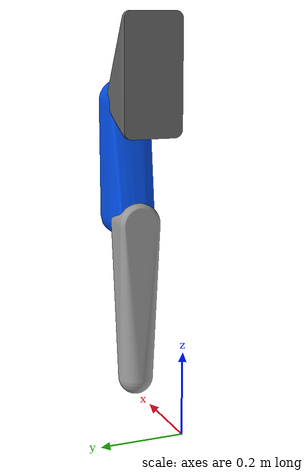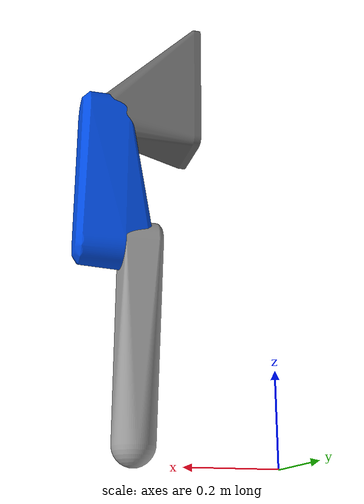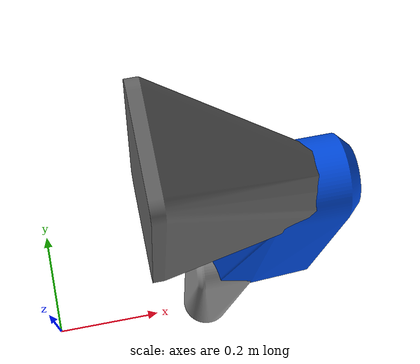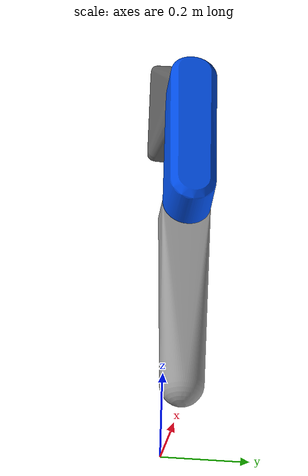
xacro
<?xml version="1.0"?>

<robot name="awesome_leg" xmlns:xacro="http://www.ros.org/wiki/xacro">

    <xacro:include filename="$(find awesome_leg)/description/urdf/utils.urdf.xacro"/>
    <xacro:include filename="$(find awesome_leg)/description/urdf/awesome_leg.xbot.xacro"/>
    <xacro:include filename="$(find awesome_leg)/description/urdf/awesome_leg.urdf.xacro"/>
    <xacro:include filename="$(find awesome_leg)/description/urdf/test_rig.gazebo.xacro"/>

    <xacro:arg name="add_ft_sensor" default="false" />

    <xacro:arg name="dump_video_frames" default="false" />

    <xacro:property name="test_rig_base_ext" value="0.1" />
    <xacro:property name="test_rig_height" value="1.0" />
    <xacro:property name="hip_mounting_offset" value="0.08" />

    <xacro:property name="pelvis_mounting_height" value="0.25" />

    <link name="world" />

    <joint name="world_test_rig" type="floating">
        <parent link="world" />
        <child link="base_link" />
        <origin xyz="${test_rig_base_ext + hip_mounting_offset} 0 ${test_rig_height / 2 + pelvis_mounting_height}" rpy="0.0 0.0 ${-PI_2}" />
    </joint>

    <link name="base_link">
        <visual name="base_link_visual">
            <origin xyz="0.0 0.0 0.0" rpy="0.0 0.0 0.0"/>
            <geometry>
                <mesh filename="package://awesome_leg/description/new_meshes/visual/base.stl" scale="${dmTom} ${dmTom} ${dmTom}"/>
            </geometry>
            <material name="black"/>
        </visual>
        <collision>
            <origin xyz="0.0 0.0 0.0" rpy="0.0 0.0 0.0"/>
            <geometry>
                <mesh filename="package://awesome_leg/description/new_meshes/collision/base.stl" scale="${dmTom} ${dmTom} ${dmTom}"/>
            </geometry>
        </collision>
        <inertial>
            <mass value="${4.5477704 + payload_mass}" />
            <inertia ixx="${4.4624842e+04 * kgmm2_2_kgm2}" iyy="${2.6977590e+04 * kgmm2_2_kgm2}" izz="${2.7956754e+04 * kgmm2_2_kgm2}"
                    ixy="${-1.4644878e+01 * kgmm2_2_kgm2}" ixz="${3.0225947e+01 * kgmm2_2_kgm2}" iyz="${9.6636358e+03 * kgmm2_2_kgm2}" />
        </inertial>
    </link>

    <xacro:awesome_leg id="1" base_link="base_link" add_ft_sensor="$(arg add_ft_sensor)"/>

</robot>

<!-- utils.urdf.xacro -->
<robot xmlns:xacro="http://ros.org/wiki/xacro">

<!-- scale -->
<xacro:property name="mmTom" value="0.001" />
<xacro:property name="dmTom" value="0.1" />
<xacro:property name="mm2Tom2" value="${0.001*0.001}" />
<xacro:property name="tonsToKg" value="1000.0" />
<xacro:property name="kgmm2_2_kgm2" value="${1e-06}" />

<xacro:property name="PI" value="3.14159265359" />
<xacro:property name="PI_2" value="1.57079632679" />
<xacro:property name="PI_4" value="0.7853981633974483" />
<xacro:property name="DEG2RAD" value="${PI/180.0}" />

<xacro:property name="sliding_guide_static_friction" value="0.0" />
<xacro:property name="sliding_guide_dyn_friction" value="0.0" />

<xacro:property name="payload_mass" value="${0.0}" />

<xacro:property name="camera_height" value="0.5" />
<xacro:property name="camera_depth" value="1.0" />

<xacro:property name="fts_sphere_radius" value="0.001" />
<xacro:property name="fts_delta" value="0.000" />
<xacro:property name="aux_mass_tip" value="0.01" />

<!-- color -->
<material name="darkblue">
    <color rgba="0.0 0.3 0.9 1"/>
</material>

<material name="dark">
    <color rgba="0.6 0.6 0.6 1"/>
</material>

<material name="sky_blue">
        <color rgba="0.13 0.44 0.70 1"/>
</material>
<material name="grey">
    <color rgba=" 0.6 0.6 0.6 1"/>
</material>
<material name="black">
    <color rgba="0.4 0.4 0.4 1"/>
</material>
<material name="brown">
    <color rgba="0.59 0.29 0.0 1"/>
</material>

<xacro:macro name="fake_inertial">
    <inertial>
        <mass value="0.1"/>
        <inertia ixx="0.0001" ixy="0" ixz="0" iyy="0.0001" iyz="0" izz="0.0001"/>
        <origin xyz="0 0 0"/>
    </inertial>
</xacro:macro>

</robot>

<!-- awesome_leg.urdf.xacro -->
<robot name="awesome_leg" xmlns:xacro="http://www.ros.org/wiki/xacro">

    <xacro:include filename="$(find awesome_leg)/description/urdf/awesome_leg.gazebo.xacro" />

    <xacro:macro name="awesome_leg" params="id base_link add_ft_sensor" >

        <xacro:awesome_leg_gazebo id="${id}" add_ft_sensor="${add_ft_sensor}"/>

        <xacro:unless value="${ base_link=='None' or base_link=='none'}">
            <!-- only add joint to base if argument is non-empty -->
            <joint name="hip_pitch_${id}" type="revolute">
                <parent link="${base_link}" />
                <child link="femur${id}" />
                <axis xyz="0 1 0"/>
                <origin xyz="0 ${214.6 * mmTom} 0" />
                <limit effort="112" lower="-2.4" upper="2.4" velocity="20.0"/>
            </joint>

        </xacro:unless>

        <link name="femur${id}">
            <inertial>
                <origin xyz="0.0 0.0 0.0"/>
                <mass value="3.3712777"/>
                <inertia ixx="${4.6647423e+04 * kgmm2_2_kgm2}" iyy="${4.3720135e+04 * kgmm2_2_kgm2}" izz="${7.5794813e+04 * kgmm2_2_kgm2}"
                    ixy="${-1.2697640e+01 * kgmm2_2_kgm2}" ixz="${-3.2745810e+01 * kgmm2_2_kgm2}" iyz="${-6.3299091e+04 * kgmm2_2_kgm2}" />
            </inertial>
            <visual>
                <origin rpy="0.0 0.0 0.0" xyz="0.0 0.0 0.0"/>
                <geometry>
                    <mesh filename="package://awesome_leg/description/new_meshes/visual/femur.stl" scale="${dmTom} ${dmTom} ${dmTom}"/>
                </geometry>
                <material name="darkblue"/>
            </visual>
            <collision>
                <origin rpy="0.0 0.0 0.0" xyz="0.0 0.0 0.0"/>
                <geometry>
                    <mesh filename="package://awesome_leg/description/new_meshes/collision/femur.stl" scale="${dmTom} ${dmTom} ${dmTom}"/>
                </geometry>
            </collision>
        </link>

        <joint name="knee_pitch_${id}" type="revolute">
            <parent link="femur${id}"/>
            <child link="shin${id}"/>
            <origin rpy="0.0 0.0 0.0" xyz="0.0 ${-118.2 * mmTom} ${-300.0 * mmTom}"/>
            <axis xyz="0 -1 0"/>
            <limit effort="112" lower="-2.4" upper="2.4" velocity="20.0"/>
        </joint>

        <link name="shin${id}">
            <inertial>
                <origin xyz="0.0 0.0 0.0"/>
                <mass value="1.3106594"/>
                <inertia ixx="${4.0133965e+04 * kgmm2_2_kgm2}" iyy="${4.0269285e+04 * kgmm2_2_kgm2}" izz="${1.5274496e+03 * kgmm2_2_kgm2}"
                    ixy="${4.6219082e-02 * kgmm2_2_kgm2}" ixz="${-3.0432320e-01 * kgmm2_2_kgm2}" iyz="${1.3816329e+03 * kgmm2_2_kgm2}" />
            </inertial>
            <visual>
                <origin rpy="0.0 0.0 0.0" xyz="0.0 0.0 0.0"/>
                <geometry>
                    <mesh filename="package://awesome_leg/description/new_meshes/visual/shin.stl" scale="${dmTom} ${dmTom} ${dmTom}"/>
                </geometry>
                <material name="grey"/>
            </visual>
            <collision>
                <origin rpy="0.0 0.0 0.0" xyz="0.0 0.0 0.0"/>
                <geometry>
                    <mesh filename="package://awesome_leg/description/new_meshes/collision/shin.stl" scale="${dmTom} ${dmTom} ${dmTom}"/>
                </geometry>
            </collision>
        </link>

        <xacro:unless value="${ add_ft_sensor == True}">

            <joint name="tip_joint_${id}" type="fixed">
                <parent link="shin${id}"/>
                <child link="tip${id}"/>
                <origin xyz="0.0 ${23.3000 * mmTom} ${-451 * mmTom}"/>
            </joint>

            <link name="tip${id}"/>

        </xacro:unless>

        <xacro:if value="${ add_ft_sensor == True}">

            <joint name="tip_joint_${id}" type="prismatic">
                <parent link="shin${id}"/>
                <child link="tip${id}"/>
                <origin xyz="0.0 ${23.3000 * mmTom} ${-451 * mmTom + fts_sphere_radius - fts_delta}"/>
                <limit effort="0" lower="0.0" upper="0.0" velocity="0.0"/>
                <axis  xyz="0 0 1"/>
            </joint>
            <link name="tip${id}">
                    <origin xyz="0.0 0.0 0.0"/>
                    <inertial>
                        <origin xyz="0.0 0.0 0.0"/>
                        <mass value="${aux_mass_tip}"/> <!-- fake inertial value, otherwise Gazebo throws errors  -->
                        <inertia ixx="0" iyy="0" izz="0"
                            ixy="0" ixz="0" iyz="0" />
                    </inertial>
                    <collision>
                        <origin rpy="0.0 0.0 0.0" xyz="0.0 0.0 0.0"/>
                        <geometry>
                            <sphere radius="${fts_sphere_radius}"/>
                        </geometry>
                        <max_contacts> 20 </max_contacts>
                    </collision>

            </link>

        </xacro:if>

    </xacro:macro>

</robot>
